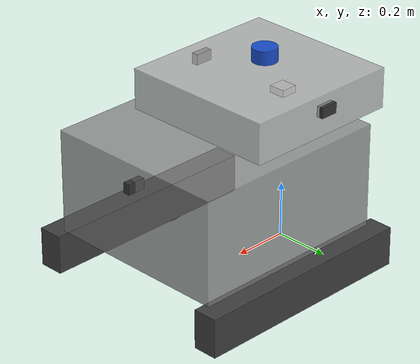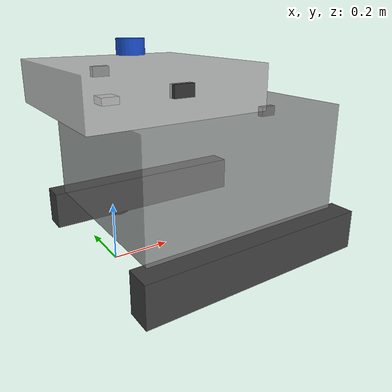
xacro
<?xml version="1.0"?>
<robot xmlns:xacro="http://www.ros.org/wiki/xacro" name="igvc">

  <xacro:arg name="serial_port" default="/dev/ttyACM0" />

  <!-- Drivetrain (must match controllers.yaml) -->
  <xacro:property name="wheel_separation" value="0.730" />
  <xacro:property name="wheel_radius"     value="0.0762" />

  <!-- IMU height above ground (21.5 in) -->
  <xacro:property name="imu_height" value="0.5556" />

  <!-- Drive sprocket position relative to IMU -->
  <xacro:property name="sprocket_x" value="0.1778" />
  <xacro:property name="sprocket_z" value="-0.4890" />

  <!-- Main box: 29.25 × 26.75 × 14.75 in -->
  <xacro:property name="main_length" value="0.7430" />
  <xacro:property name="main_width"  value="0.6795" />
  <xacro:property name="main_height" value="0.3747" />

  <!-- Top box: 23 × 22.5 × 5.75 in -->
  <xacro:property name="top_length" value="0.5842" />
  <xacro:property name="top_width"  value="0.5715" />
  <xacro:property name="top_height" value="0.1461" />

  <!-- Tread enclosures: 32.5 × 3.5 × 5.5 in, 0.75 in inside main box edges -->
  <xacro:property name="tread_length" value="0.8255" />
  <xacro:property name="tread_width"  value="0.0889" />
  <xacro:property name="tread_height" value="0.1397" />
  <xacro:property name="tread_y"      value="0.3653" />

  <!-- ================= Base ================= -->

  <link name="base_footprint" />

  <link name="base_link">
    <!-- Main chassis box (shifted up so treads fit beneath) -->
    <visual>
      <origin xyz="0.3143 0 -0.2191" rpy="0 0 0" />
      <geometry>
        <box size="${main_length} ${main_width} ${main_height}" />
      </geometry>
      <material name="grey"><color rgba="0.55 0.55 0.55 0.8" /></material>
    </visual>
    <!-- Top sensor platform -->
    <visual>
      <origin xyz="0.1143 0 0.0413" rpy="0 0 0" />
      <geometry>
        <box size="${top_length} ${top_width} ${top_height}" />
      </geometry>
      <material name="light_grey"><color rgba="0.70 0.70 0.70 0.8" /></material>
    </visual>
    <!-- Left tread enclosure -->
    <visual>
      <origin xyz="0.3143 ${tread_y} -0.4763" rpy="0 0 0" />
      <geometry>
        <box size="${tread_length} ${tread_width} ${tread_height}" />
      </geometry>
      <material name="dark_grey"><color rgba="0.25 0.25 0.25 0.9" /></material>
    </visual>
    <!-- Right tread enclosure -->
    <visual>
      <origin xyz="0.3143 ${-tread_y} -0.4763" rpy="0 0 0" />
      <geometry>
        <box size="${tread_length} ${tread_width} ${tread_height}" />
      </geometry>
      <material name="dark_grey"><color rgba="0.25 0.25 0.25 0.9" /></material>
    </visual>
  </link>

  <joint name="base_joint" type="fixed">
    <parent link="base_footprint" />
    <child  link="base_link" />
    <origin xyz="0 0 ${imu_height}" rpy="0 0 0" />
  </joint>

  <!-- ================= Drive Sprockets ================= -->

  <link name="left_wheel">
    <visual>
      <geometry><cylinder radius="${wheel_radius}" length="0.05" /></geometry>
      <material name="black"><color rgba="0.1 0.1 0.1 1" /></material>
    </visual>
  </link>
  <joint name="left_wheel_joint" type="continuous">
    <parent link="base_link" />
    <child  link="left_wheel" />
    <origin xyz="${sprocket_x} ${wheel_separation/2} ${sprocket_z}" rpy="${-pi/2} 0 0" />
    <axis xyz="0 0 1" />
  </joint>

  <link name="right_wheel">
    <visual>
      <geometry><cylinder radius="${wheel_radius}" length="0.05" /></geometry>
      <material name="black"><color rgba="0.1 0.1 0.1 1" /></material>
    </visual>
  </link>
  <joint name="right_wheel_joint" type="continuous">
    <parent link="base_link" />
    <child  link="right_wheel" />
    <origin xyz="${sprocket_x} ${-wheel_separation/2} ${sprocket_z}" rpy="${-pi/2} 0 0" />
    <axis xyz="0 0 1" />
  </joint>

  <!-- ================= IMU (XSENS) ================= -->

  <link name="imu_link">
    <visual>
      <geometry><box size="0.06 0.06 0.025" /></geometry>
      <material name="white"><color rgba="0.95 0.95 0.95 1" /></material>
    </visual>
  </link>
  <joint name="imu_joint" type="fixed">
    <parent link="base_link" />
    <child  link="imu_link" />
    <origin xyz="0 0 0" rpy="0 0 0" />
  </joint>

  <!-- ================= LIDAR ================= -->
  <!-- (3.5, 0, 6.25) in → (0.0889, 0, 0.1588) m -->

  <link name="lidar_link">
    <visual>
      <geometry><cylinder radius="0.045" length="0.05" /></geometry>
      <material name="blue"><color rgba="0.1 0.3 0.8 1" /></material>
    </visual>
  </link>
  <joint name="lidar_joint" type="fixed">
    <parent link="base_link" />
    <child  link="lidar_link" />
    <origin xyz="0.0889 0 0.1588" rpy="0 0 0" />
  </joint>

  <!-- ================= Left ZED X (red) ================= -->
  <!-- (3.875, -11.25, 2.25) in → (0.0984, 0.2858, 0.0572) m  [Y negated for ROS] -->

  <link name="left_zedx_link">
    <visual>
      <geometry><box size="0.025 0.065 0.038" /></geometry>
      <material name="dark_grey"><color rgba="0.2 0.2 0.2 1" /></material>
    </visual>
  </link>
  <joint name="left_zedx_joint" type="fixed">
    <parent link="base_link" />
    <child  link="left_zedx_link" />
    <origin xyz="0.0984 0.2858 0.0572" rpy="0 0 ${pi/2}" />
  </joint>

  <link name="left_zedx_optical" />
  <joint name="left_zedx_optical_joint" type="fixed">
    <parent link="left_zedx_link" />
    <child  link="left_zedx_optical" />
    <origin xyz="0 0 0" rpy="${-pi/2} 0 ${-pi/2}" />
  </joint>

  <!-- ================= Right ZED X (yellow) ================= -->
  <!-- (3.875, 11.25, 2.25) in → (0.0984, -0.2858, 0.0572) m  [Y negated for ROS] -->

  <link name="right_zedx_link">
    <visual>
      <geometry><box size="0.025 0.065 0.038" /></geometry>
      <material name="dark_grey"><color rgba="0.2 0.2 0.2 1" /></material>
    </visual>
  </link>
  <joint name="right_zedx_joint" type="fixed">
    <parent link="base_link" />
    <child  link="right_zedx_link" />
    <origin xyz="0.0984 -0.2858 0.0572" rpy="0 0 ${-pi/2}" />
  </joint>

  <link name="right_zedx_optical" />
  <joint name="right_zedx_optical_joint" type="fixed">
    <parent link="right_zedx_link" />
    <child  link="right_zedx_optical" />
    <origin xyz="0 0 0" rpy="${-pi/2} 0 ${-pi/2}" />
  </joint>

  <!-- ================= Front ZED X (green) ================= -->
  <!-- (26.75, 0, -4.25) in → (0.6795, 0, -0.1080) m -->

  <link name="front_zedx_link">
    <visual>
      <geometry><box size="0.065 0.025 0.038" /></geometry>
      <material name="dark_grey"><color rgba="0.2 0.2 0.2 1" /></material>
    </visual>
  </link>
  <joint name="front_zedx_joint" type="fixed">
    <parent link="base_link" />
    <child  link="front_zedx_link" />
    <origin xyz="0.6795 0 -0.1080" rpy="0 0 0" />
  </joint>

  <link name="front_zedx_optical" />
  <joint name="front_zedx_optical_joint" type="fixed">
    <parent link="front_zedx_link" />
    <child  link="front_zedx_optical" />
    <origin xyz="0 0 0" rpy="${-pi/2} 0 ${-pi/2}" />
  </joint>

  <!-- ================= ros2_control ================= -->
  <xacro:include filename="$(find igvc_description)/urdf/ros2_control.urdf.xacro" />

</robot>
